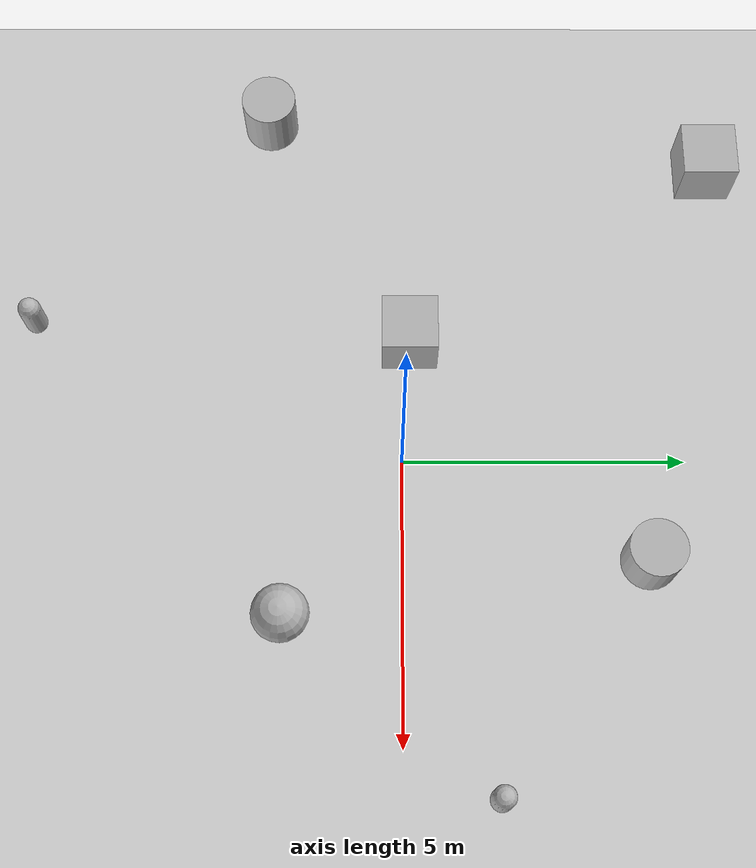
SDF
<sdf version="1.4">
 <world name="moon">
  <plugin filename="ignition-gazebo-physics-system" name="ignition::gazebo::systems::Physics"/>
  <plugin filename="ignition-gazebo-sensors-system" name="ignition::gazebo::systems::Sensors">
   <render_engine>ogre2</render_engine>
  </plugin>
  <plugin filename="libignition-gazebo-imu-system.so" name="ignition::gazebo::systems::Imu"/>
  <plugin filename="ignition-gazebo-scene-broadcaster-system" name="ignition::gazebo::systems::SceneBroadcaster"/>
  <plugin filename="ignition-gazebo-user-commands-system" name="ignition::gazebo::systems::UserCommands"/>
  <light name="sun" type="directional">
   <pose>0 0 10 0 0 0</pose>
   <diffuse>0.8 0.8 0.8 1</diffuse>
   <specular>0.2 0.2 0.2 1</specular>
   <attenuation>
    <range>1000</range>
    <constant>0.9</constant>
    <linear>0.01</linear>
    <quadratic>0.001</quadratic>
   </attenuation>
   <direction>-0.5 0.1 -0.9</direction>
  </light>
  <model name="ground_plane">
   <static>true</static>
   <link name="link">
    <collision name="collision">
     <geometry><plane><normal>0 0 1</normal><size>100 100</size></plane></geometry>
    </collision>
    <visual name="visual">
     <geometry><plane><normal>0 0 1</normal><size>100 100</size></plane></geometry>
     <material>
      <ambient>0.8 0.8 0.8 1</ambient>
      <diffuse>0.8 0.8 0.8 1</diffuse>
      <specular>0.8 0.8 0.8 1</specular>
     </material>
    </visual>
    <inertial>
     <mass>1</mass>
     <inertia><ixx>1</ixx><ixy>0</ixy><ixz>0</ixz><iyy>1</iyy><iyz>0</iyz><izz>1</izz></inertia>
    </inertial>
   </link>
  </model>
  <model name="cylinder">
   <pose>1.80492 4.26844 0.5 -0 -0 -0</pose>
   <link name="cylinder_link">
    <inertial>
     <inertia>
      <ixx>0.14580000000000001</ixx>
      <ixy>0</ixy>
      <ixz>0</ixz>
      <iyy>0.14580000000000001</iyy>
      <iyz>0</iyz>
      <izz>0.125</izz>
     </inertia>
     <mass>1</mass>
    </inertial>
    <collision name="cylinder_collision">
     <geometry><cylinder><radius>0.5</radius><length>1</length></cylinder></geometry>
    </collision>
    <visual name="cylinder_visual">
     <geometry><cylinder><radius>0.5</radius><length>1</length></cylinder></geometry>
     <material>
      <ambient>0.3 0.3 0.3 1</ambient>
      <diffuse>0.7 0.7 0.7 1</diffuse>
      <specular>1 1 1 1</specular>
     </material>
    </visual>
   </link>
   <static>false</static>
  </model>
  <model name="box">
   <pose>-2.29688 0.13707 0.5 0 -0 -0</pose>
   <link name="box_link">
    <inertial>
     <inertia><ixx>0.16666</ixx><ixy>0</ixy><ixz>0</ixz><iyy>0.16666</iyy><iyz>0</iyz><izz>0.16666</izz></inertia>
     <mass>1</mass>
    </inertial>
    <collision name="box_collision"><geometry><box><size>1 1 1</size></box></geometry></collision>
    <visual name="box_visual">
     <geometry><box><size>1 1 1</size></box></geometry>
     <material>
      <ambient>0.3 0.3 0.3 1</ambient>
      <diffuse>0.7 0.7 0.7 1</diffuse>
      <specular>1 1 1 1</specular>
     </material>
    </visual>
   </link>
   <static>false</static>
  </model>
  <model name="sphere">
   <pose>2.81083 -2.06308 0.5 0 -0 0</pose>
   <link name="sphere_link">
    <inertial>
     <inertia>
      <ixx>0.10000000000000001</ixx>
      <ixy>0</ixy>
      <ixz>0</ixz>
      <iyy>0.10000000000000001</iyy>
      <iyz>0</iyz>
      <izz>0.10000000000000001</izz>
     </inertia>
     <mass>1</mass>
    </inertial>
    <collision name="sphere_collision"><geometry><sphere><radius>0.5</radius></sphere></geometry></collision>
    <visual name="sphere_visual">
     <geometry><sphere><radius>0.5</radius></sphere></geometry>
     <material>
      <ambient>0.3 0.3 0.3 1</ambient>
      <diffuse>0.7 0.7 0.7 1</diffuse>
      <specular>1 1 1 1</specular>
     </material>
    </visual>
   </link>
   <static>false</static>
  </model>
  <model name="capsule">
   <pose>5.809 1.5958 0.5 0 -0 0</pose>
   <link name="capsule_link">
    <inertial>
     <inertia>
      <ixx>0.074153999999999998</ixx>
      <ixy>0</ixy>
      <ixz>0</ixz>
      <iyy>0.074153999999999998</iyy>
      <iyz>0</iyz>
      <izz>0.018769000000000001</izz>
     </inertia>
     <mass>1</mass>
    </inertial>
    <collision name="capsule_collision">
     <geometry>
      <capsule><radius>0.20000000000000001</radius><length>0.59999999999999998</length></capsule>
     </geometry>
    </collision>
    <visual name="capsule_visual">
     <geometry>
      <capsule><radius>0.20000000000000001</radius><length>0.59999999999999998</length></capsule>
     </geometry>
     <material>
      <ambient>0.3 0.3 0.3 1</ambient>
      <diffuse>0.7 0.7 0.7 1</diffuse>
      <specular>1 1 1 1</specular>
     </material>
    </visual>
   </link>
   <static>false</static>
  </model>
  <model name="cylinder_0">
   <pose>-6.83084 -2.49193 0.5 0 -0 0</pose>
   <link name="cylinder_link">
    <inertial>
     <inertia>
      <ixx>0.14580000000000001</ixx>
      <ixy>0</ixy>
      <ixz>0</ixz>
      <iyy>0.14580000000000001</iyy>
      <iyz>0</iyz>
      <izz>0.125</izz>
     </inertia>
     <mass>1</mass>
    </inertial>
    <collision name="cylinder_collision">
     <geometry><cylinder><radius>0.5</radius><length>1</length></cylinder></geometry>
    </collision>
    <visual name="cylinder_visual">
     <geometry><cylinder><radius>0.5</radius><length>1</length></cylinder></geometry>
     <material>
      <ambient>0.3 0.3 0.3 1</ambient>
      <diffuse>0.7 0.7 0.7 1</diffuse>
      <specular>1 1 1 1</specular>
     </material>
    </visual>
   </link>
   <static>false</static>
  </model>
  <model name="capsule_0">
   <pose>-2.61982 -6.66032 0.5 0 -0 0</pose>
   <link name="capsule_link">
    <inertial>
     <inertia>
      <ixx>0.074153999999999998</ixx>
      <ixy>0</ixy>
      <ixz>0</ixz>
      <iyy>0.074153999999999998</iyy>
      <iyz>0</iyz>
      <izz>0.018769000000000001</izz>
     </inertia>
     <mass>1</mass>
    </inertial>
    <collision name="capsule_collision">
     <geometry>
      <capsule><radius>0.20000000000000001</radius><length>0.59999999999999998</length></capsule>
     </geometry>
    </collision>
    <visual name="capsule_visual">
     <geometry>
      <capsule><radius>0.20000000000000001</radius><length>0.59999999999999998</length></capsule>
     </geometry>
     <material>
      <ambient>0.3 0.3 0.3 1</ambient>
      <diffuse>0.7 0.7 0.7 1</diffuse>
      <specular>1 1 1 1</specular>
     </material>
    </visual>
   </link>
   <static>false</static>
  </model>
  <model name="box_0">
   <pose>-5.78977 5.70875 0.5 0 -0 -0</pose>
   <link name="box_link">
    <inertial>
     <inertia><ixx>0.16666</ixx><ixy>0</ixy><ixz>0</ixz><iyy>0.16666</iyy><iyz>0</iyz><izz>0.16666</izz></inertia>
     <mass>1</mass>
    </inertial>
    <collision name="box_collision"><geometry><box><size>1 1 1</size></box></geometry></collision>
    <visual name="box_visual">
     <geometry><box><size>1 1 1</size></box></geometry>
     <material>
      <ambient>0.3 0.3 0.3 1</ambient>
      <diffuse>0.7 0.7 0.7 1</diffuse>
      <specular>1 1 1 1</specular>
     </material>
    </visual>
   </link>
   <static>false</static>
  </model>
  <physics type="ignored">
   <max_step_size>0.01</max_step_size>
   <real_time_factor>1</real_time_factor>
   <real_time_update_rate>100</real_time_update_rate>
   <gravity>0 0 -1.622</gravity>
  </physics>
 </world>
</sdf>
